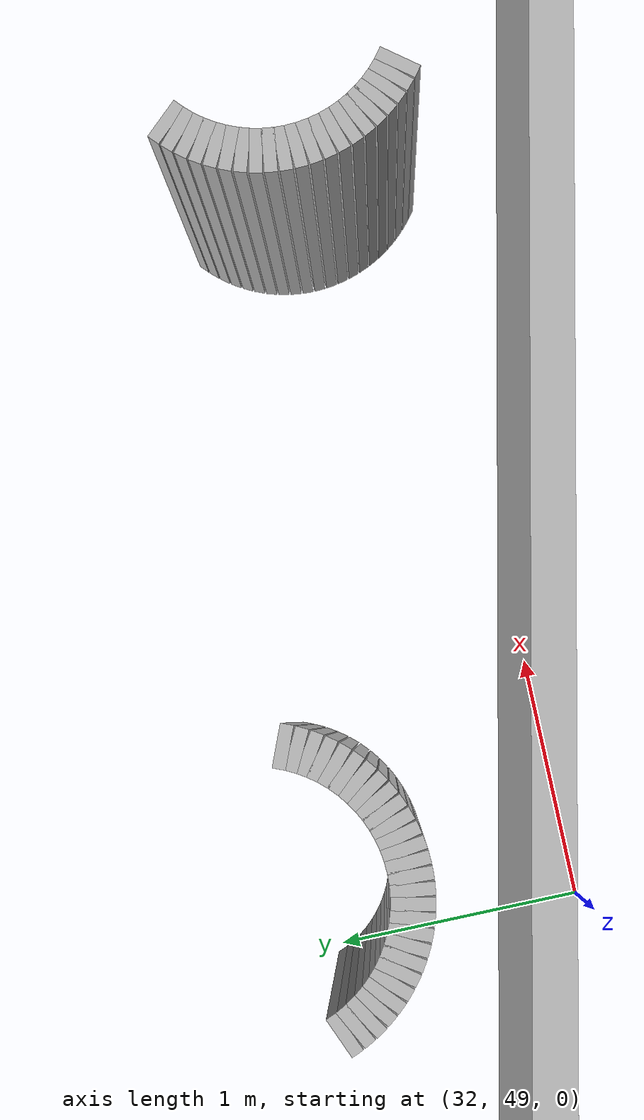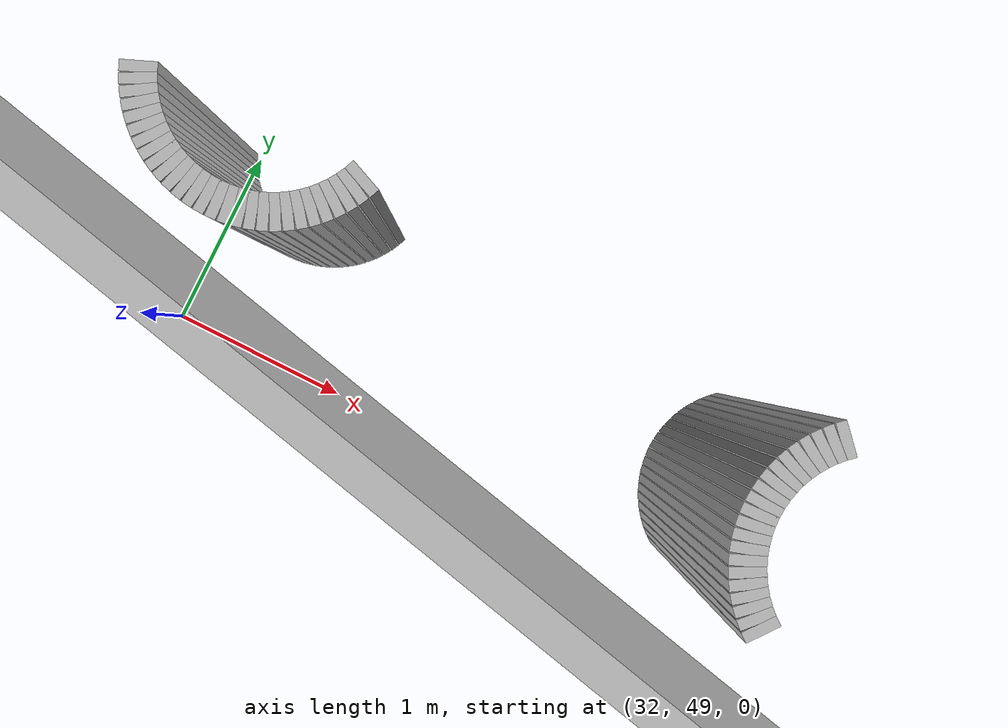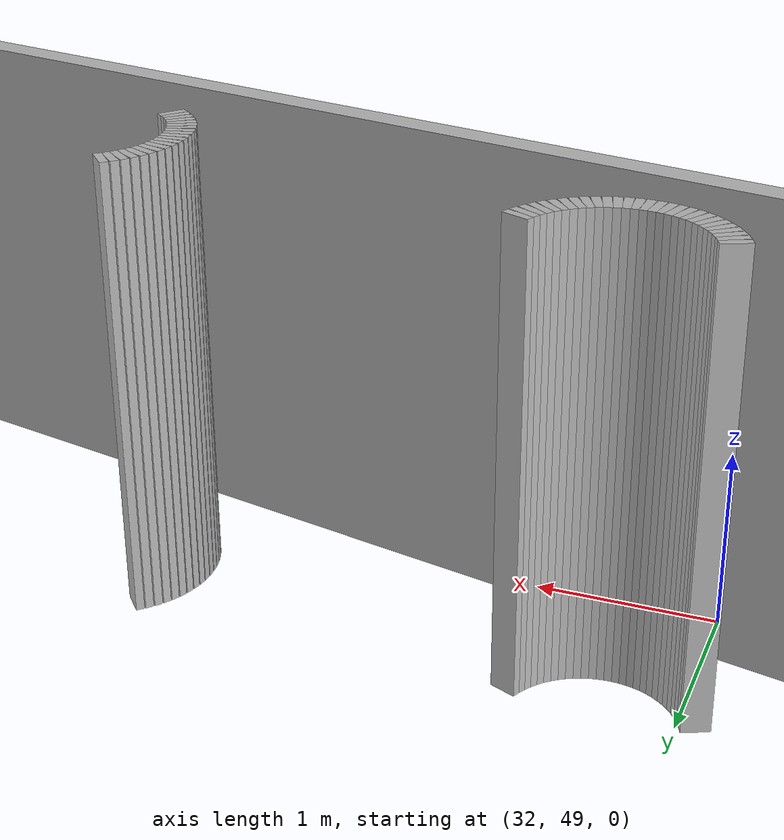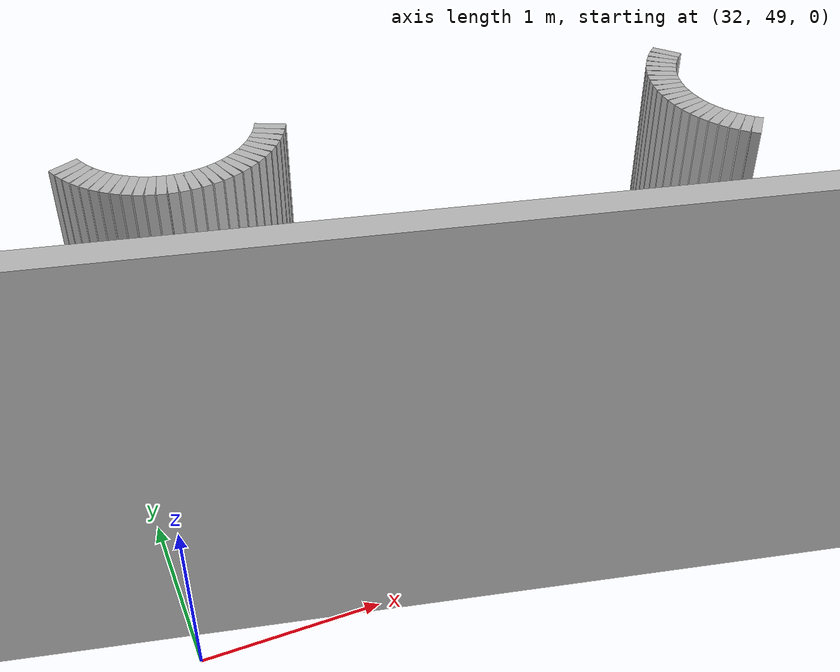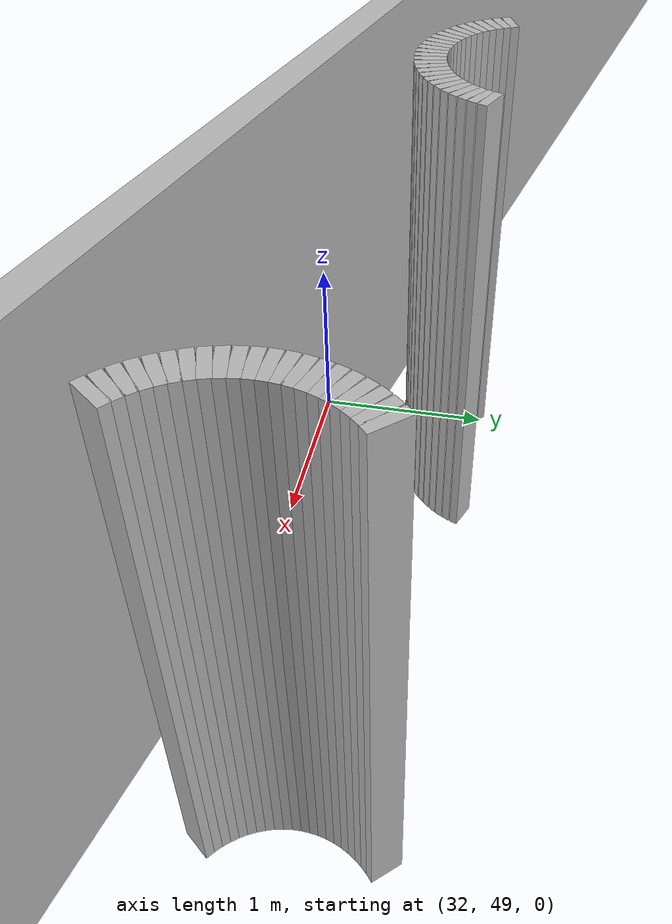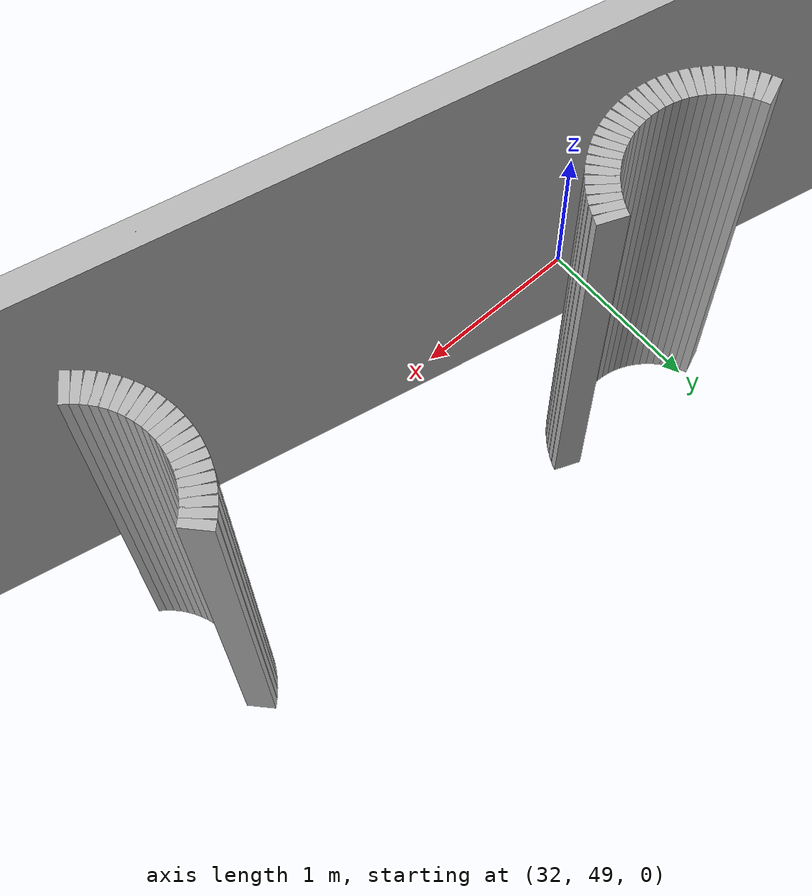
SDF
<sdf version="1.6">
 <model name="sps_2603">
  <static>1</static>
  <allow_auto_disable>0</allow_auto_disable>
  <link name="Wall2060">
   <collision name="collision"><geometry><box><size>0.0452834 0.15 2.5</size></box></geometry></collision>
   <visual name="visual">
    <geometry><box><size>0.0452834 0.15 2.5</size></box></geometry>
    <transparency>0.0</transparency>
   </visual>
   <pose>32.868 49.9762 1.25 0 0 -1.96507</pose>
  </link>
  <link name="Wall2061">
   <collision name="collision"><geometry><box><size>0.0455348 0.15 2.5</size></box></geometry></collision>
   <visual name="visual">
    <geometry><box><size>0.0455348 0.15 2.5</size></box></geometry>
    <transparency>0.0</transparency>
   </visual>
   <pose>32.8488 49.9351 1.25 0 0 -2.05003</pose>
  </link>
  <link name="Wall2062">
   <collision name="collision"><geometry><box><size>0.0452906 0.15 2.5</size></box></geometry></collision>
   <visual name="visual">
    <geometry><box><size>0.0452906 0.15 2.5</size></box></geometry>
    <transparency>0.0</transparency>
   </visual>
   <pose>32.8261 49.8958 1.25 0 0 -2.14011</pose>
  </link>
  <link name="Wall2063">
   <collision name="collision"><geometry><box><size>0.0453637 0.15 2.5</size></box></geometry></collision>
   <visual name="visual">
    <geometry><box><size>0.0453637 0.15 2.5</size></box></geometry>
    <transparency>0.0</transparency>
   </visual>
   <pose>32.8001 49.8587 1.25 0 0 -2.22452</pose>
  </link>
  <link name="Wall2064">
   <collision name="collision"><geometry><box><size>0.0453598 0.15 2.5</size></box></geometry></collision>
   <visual name="visual">
    <geometry><box><size>0.0453598 0.15 2.5</size></box></geometry>
    <transparency>0.0</transparency>
   </visual>
   <pose>32.771 49.824 1.25 0 0 -2.31241</pose>
  </link>
  <link name="Wall2065">
   <collision name="collision"><geometry><box><size>0.0454087 0.15 2.5</size></box></geometry></collision>
   <visual name="visual">
    <geometry><box><size>0.0454087 0.15 2.5</size></box></geometry>
    <transparency>0.0</transparency>
   </visual>
   <pose>32.7389 49.792 1.25 0 0 -2.40278</pose>
  </link>
  <link name="Wall2066">
   <collision name="collision"><geometry><box><size>0.0453637 0.15 2.5</size></box></geometry></collision>
   <visual name="visual">
    <geometry><box><size>0.0453637 0.15 2.5</size></box></geometry>
    <transparency>0.0</transparency>
   </visual>
   <pose>32.7041 49.7629 1.25 0 0 -2.48787</pose>
  </link>
  <link name="Wall2067">
   <collision name="collision"><geometry><box><size>0.045342 0.15 2.5</size></box></geometry></collision>
   <visual name="visual">
    <geometry><box><size>0.045342 0.15 2.5</size></box></geometry>
    <transparency>0.0</transparency>
   </visual>
   <pose>32.667 49.7369 1.25 0 0 -2.57301</pose>
  </link>
  <link name="Wall2068">
   <collision name="collision"><geometry><box><size>0.0453724 0.15 2.5</size></box></geometry></collision>
   <visual name="visual">
    <geometry><box><size>0.0453724 0.15 2.5</size></box></geometry>
    <transparency>0.0</transparency>
   </visual>
   <pose>32.6277 49.7142 1.25 0 0 -2.6605</pose>
  </link>
  <link name="Wall2069">
   <collision name="collision"><geometry><box><size>0.0453827 0.15 2.5</size></box></geometry></collision>
   <visual name="visual">
    <geometry><box><size>0.0453827 0.15 2.5</size></box></geometry>
    <transparency>0.0</transparency>
   </visual>
   <pose>32.5866 49.6951 1.25 0 0 -2.75259</pose>
  </link>
  <link name="Wall2070">
   <collision name="collision"><geometry><box><size>0.0452475 0.15 2.5</size></box></geometry></collision>
   <visual name="visual">
    <geometry><box><size>0.0452475 0.15 2.5</size></box></geometry>
    <transparency>0.0</transparency>
   </visual>
   <pose>32.5441 49.6797 1.25 0 0 -2.83605</pose>
  </link>
  <link name="Wall2071">
   <collision name="collision"><geometry><box><size>0.0453551 0.15 2.5</size></box></geometry></collision>
   <visual name="visual">
    <geometry><box><size>0.0453551 0.15 2.5</size></box></geometry>
    <transparency>0.0</transparency>
   </visual>
   <pose>32.5004 49.6679 1.25 0 0 -2.92044</pose>
  </link>
  <link name="Wall2072">
   <collision name="collision"><geometry><box><size>0.0453551 0.15 2.5</size></box></geometry></collision>
   <visual name="visual">
    <geometry><box><size>0.0453551 0.15 2.5</size></box></geometry>
    <transparency>0.0</transparency>
   </visual>
   <pose>32.4557 49.66 1.25 0 0 -3.0134</pose>
  </link>
  <link name="Wall2073">
   <collision name="collision"><geometry><box><size>0.0454548 0.15 2.5</size></box></geometry></collision>
   <visual name="visual">
    <geometry><box><size>0.0454548 0.15 2.5</size></box></geometry>
    <transparency>0.0</transparency>
   </visual>
   <pose>32.4105 49.6561 1.25 0 0 -3.09727</pose>
  </link>
  <link name="Wall2074">
   <collision name="collision"><geometry><box><size>0.0454548 0.15 2.5</size></box></geometry></collision>
   <visual name="visual">
    <geometry><box><size>0.0454548 0.15 2.5</size></box></geometry>
    <transparency>0.0</transparency>
   </visual>
   <pose>32.3651 49.6561 1.25 0 -0 3.09727</pose>
  </link>
  <link name="Wall2075">
   <collision name="collision"><geometry><box><size>0.0451973 0.15 2.5</size></box></geometry></collision>
   <visual name="visual">
    <geometry><box><size>0.0451973 0.15 2.5</size></box></geometry>
    <transparency>0.0</transparency>
   </visual>
   <pose>32.32 49.6601 1.25 0 -0 3.00886</pose>
  </link>
  <link name="Wall2076">
   <collision name="collision"><geometry><box><size>0.0454345 0.15 2.5</size></box></geometry></collision>
   <visual name="visual">
    <geometry><box><size>0.0454345 0.15 2.5</size></box></geometry>
    <transparency>0.0</transparency>
   </visual>
   <pose>32.2754 49.668 1.25 0 -0 2.92496</pose>
  </link>
  <link name="Wall2077">
   <collision name="collision"><geometry><box><size>0.0453057 0.15 2.5</size></box></geometry></collision>
   <visual name="visual">
    <geometry><box><size>0.0453057 0.15 2.5</size></box></geometry>
    <transparency>0.0</transparency>
   </visual>
   <pose>32.2317 49.6797 1.25 0 -0 2.83646</pose>
  </link>
  <link name="Wall2078">
   <collision name="collision"><geometry><box><size>0.0454525 0.15 2.5</size></box></geometry></collision>
   <visual name="visual">
    <geometry><box><size>0.0454525 0.15 2.5</size></box></geometry>
    <transparency>0.0</transparency>
   </visual>
   <pose>32.189 49.6952 1.25 0 -0 2.74887</pose>
  </link>
  <link name="Wall2079">
   <collision name="collision"><geometry><box><size>0.0453724 0.15 2.5</size></box></geometry></collision>
   <visual name="visual">
    <geometry><box><size>0.0453724 0.15 2.5</size></box></geometry>
    <transparency>0.0</transparency>
   </visual>
   <pose>32.1479 49.7144 1.25 0 -0 2.6605</pose>
  </link>
  <link name="Wall2080">
   <collision name="collision"><geometry><box><size>0.0452906 0.15 2.5</size></box></geometry></collision>
   <visual name="visual">
    <geometry><box><size>0.0452906 0.15 2.5</size></box></geometry>
    <transparency>0.0</transparency>
   </visual>
   <pose>32.1088 49.7371 1.25 0 -0 2.57228</pose>
  </link>
  <link name="Wall2081">
   <collision name="collision"><geometry><box><size>0.0453637 0.15 2.5</size></box></geometry></collision>
   <visual name="visual">
    <geometry><box><size>0.0453637 0.15 2.5</size></box></geometry>
    <transparency>0.0</transparency>
   </visual>
   <pose>32.0717 49.7631 1.25 0 -0 2.48787</pose>
  </link>
  <link name="Wall2082">
   <collision name="collision"><geometry><box><size>0.0453148 0.15 2.5</size></box></geometry></collision>
   <visual name="visual">
    <geometry><box><size>0.0453148 0.15 2.5</size></box></geometry>
    <transparency>0.0</transparency>
   </visual>
   <pose>32.037 49.7922 1.25 0 -0 2.39907</pose>
  </link>
  <link name="Wall2083">
   <collision name="collision"><geometry><box><size>0.0453148 0.15 2.5</size></box></geometry></collision>
   <visual name="visual">
    <geometry><box><size>0.0453148 0.15 2.5</size></box></geometry>
    <transparency>0.0</transparency>
   </visual>
   <pose>32.005 49.8242 1.25 0 -0 2.31332</pose>
  </link>
  <link name="Wall2084">
   <collision name="collision"><geometry><box><size>0.0454753 0.15 2.5</size></box></geometry></collision>
   <visual name="visual">
    <geometry><box><size>0.0454753 0.15 2.5</size></box></geometry>
    <transparency>0.0</transparency>
   </visual>
   <pose>31.9758 49.8589 1.25 0 -0 2.22772</pose>
  </link>
  <link name="Wall2085">
   <collision name="collision"><geometry><box><size>0.0453984 0.15 2.5</size></box></geometry></collision>
   <visual name="visual">
    <geometry><box><size>0.0453984 0.15 2.5</size></box></geometry>
    <transparency>0.0</transparency>
   </visual>
   <pose>31.9498 49.8961 1.25 0 -0 2.13381</pose>
  </link>
  <link name="Wall2086">
   <collision name="collision"><geometry><box><size>0.0453724 0.15 2.5</size></box></geometry></collision>
   <visual name="visual">
    <geometry><box><size>0.0453724 0.15 2.5</size></box></geometry>
    <transparency>0.0</transparency>
   </visual>
   <pose>31.9271 49.9354 1.25 0 -0 2.05189</pose>
  </link>
  <link name="Wall2087">
   <collision name="collision"><geometry><box><size>0.0452271 0.15 2.5</size></box></geometry></collision>
   <visual name="visual">
    <geometry><box><size>0.0452271 0.15 2.5</size></box></geometry>
    <transparency>0.0</transparency>
   </visual>
   <pose>31.908 49.9764 1.25 0 -0 1.96559</pose>
  </link>
  <link name="Wall2388">
   <collision name="collision"><geometry><box><size>0.0453637 0.15 2.5</size></box></geometry></collision>
   <visual name="visual">
    <geometry><box><size>0.0453637 0.15 2.5</size></box></geometry>
    <transparency>0.0</transparency>
   </visual>
   <pose>35.012 49.1233 1.25 0 -0 2.48787</pose>
  </link>
  <link name="Wall2389">
   <collision name="collision"><geometry><box><size>0.0454087 0.15 2.5</size></box></geometry></collision>
   <visual name="visual">
    <geometry><box><size>0.0454087 0.15 2.5</size></box></geometry>
    <transparency>0.0</transparency>
   </visual>
   <pose>34.9773 49.1524 1.25 0 -0 2.40278</pose>
  </link>
  <link name="Wall2390">
   <collision name="collision"><geometry><box><size>0.0453148 0.15 2.5</size></box></geometry></collision>
   <visual name="visual">
    <geometry><box><size>0.0453148 0.15 2.5</size></box></geometry>
    <transparency>0.0</transparency>
   </visual>
   <pose>34.9452 49.1844 1.25 0 -0 2.31332</pose>
  </link>
  <link name="Wall2391">
   <collision name="collision"><geometry><box><size>0.0453637 0.15 2.5</size></box></geometry></collision>
   <visual name="visual">
    <geometry><box><size>0.0453637 0.15 2.5</size></box></geometry>
    <transparency>0.0</transparency>
   </visual>
   <pose>34.916 49.2191 1.25 0 -0 2.22452</pose>
  </link>
  <link name="Wall2392">
   <collision name="collision"><geometry><box><size>0.0454964 0.15 2.5</size></box></geometry></collision>
   <visual name="visual">
    <geometry><box><size>0.0454964 0.15 2.5</size></box></geometry>
    <transparency>0.0</transparency>
   </visual>
   <pose>34.89 49.2563 1.25 0 -0 2.13722</pose>
  </link>
  <link name="Wall2393">
   <collision name="collision"><geometry><box><size>0.04526 0.15 2.5</size></box></geometry></collision>
   <visual name="visual">
    <geometry><box><size>0.04526 0.15 2.5</size></box></geometry>
    <transparency>0.0</transparency>
   </visual>
   <pose>34.8675 49.2956 1.25 0 -0 2.04711</pose>
  </link>
  <link name="Wall2394">
   <collision name="collision"><geometry><box><size>0.0454525 0.15 2.5</size></box></geometry></collision>
   <visual name="visual">
    <geometry><box><size>0.0454525 0.15 2.5</size></box></geometry>
    <transparency>0.0</transparency>
   </visual>
   <pose>34.8484 49.3367 1.25 0 -0 1.96352</pose>
  </link>
  <link name="Wall2395">
   <collision name="collision"><geometry><box><size>0.0453057 0.15 2.5</size></box></geometry></collision>
   <visual name="visual">
    <geometry><box><size>0.0453057 0.15 2.5</size></box></geometry>
    <transparency>0.0</transparency>
   </visual>
   <pose>34.8329 49.3793 1.25 0 -0 1.87593</pose>
  </link>
  <link name="Wall2396">
   <collision name="collision"><geometry><box><size>0.0452689 0.15 2.5</size></box></geometry></collision>
   <visual name="visual">
    <geometry><box><size>0.0452689 0.15 2.5</size></box></geometry>
    <transparency>0.0</transparency>
   </visual>
   <pose>34.8212 49.423 1.25 0 -0 1.78961</pose>
  </link>
  <link name="Wall2397">
   <collision name="collision"><geometry><box><size>0.0453788 0.15 2.5</size></box></geometry></collision>
   <visual name="visual">
    <geometry><box><size>0.0453788 0.15 2.5</size></box></geometry>
    <transparency>0.0</transparency>
   </visual>
   <pose>34.8133 49.4676 1.25 0 -0 1.70299</pose>
  </link>
  <link name="Wall2398">
   <collision name="collision"><geometry><box><size>0.0454548 0.15 2.5</size></box></geometry></collision>
   <visual name="visual">
    <geometry><box><size>0.0454548 0.15 2.5</size></box></geometry>
    <transparency>0.0</transparency>
   </visual>
   <pose>34.8093 49.5128 1.25 0 -0 1.61512</pose>
  </link>
  <link name="Wall2399">
   <collision name="collision"><geometry><box><size>0.0452719 0.15 2.5</size></box></geometry></collision>
   <visual name="visual">
    <geometry><box><size>0.0452719 0.15 2.5</size></box></geometry>
    <transparency>0.0</transparency>
   </visual>
   <pose>34.8093 49.5581 1.25 0 -0 1.52629</pose>
  </link>
  <link name="Wall2400">
   <collision name="collision"><geometry><box><size>0.0453788 0.15 2.5</size></box></geometry></collision>
   <visual name="visual">
    <geometry><box><size>0.0453788 0.15 2.5</size></box></geometry>
    <transparency>0.0</transparency>
   </visual>
   <pose>34.8133 49.6032 1.25 0 -0 1.4386</pose>
  </link>
  <link name="Wall2401">
   <collision name="collision"><geometry><box><size>0.0455072 0.15 2.5</size></box></geometry></collision>
   <visual name="visual">
    <geometry><box><size>0.0455072 0.15 2.5</size></box></geometry>
    <transparency>0.0</transparency>
   </visual>
   <pose>34.8212 49.6479 1.25 0 -0 1.35315</pose>
  </link>
  <link name="Wall2402">
   <collision name="collision"><geometry><box><size>0.0452475 0.15 2.5</size></box></geometry></collision>
   <visual name="visual">
    <geometry><box><size>0.0452475 0.15 2.5</size></box></geometry>
    <transparency>0.0</transparency>
   </visual>
   <pose>34.8329 49.6917 1.25 0 -0 1.26526</pose>
  </link>
  <link name="Wall2403">
   <collision name="collision"><geometry><box><size>0.0452834 0.15 2.5</size></box></geometry></collision>
   <visual name="visual">
    <geometry><box><size>0.0452834 0.15 2.5</size></box></geometry>
    <transparency>0.0</transparency>
   </visual>
   <pose>34.8484 49.7342 1.25 0 -0 1.17652</pose>
  </link>
  <link name="Wall2404">
   <collision name="collision"><geometry><box><size>0.0455348 0.15 2.5</size></box></geometry></collision>
   <visual name="visual">
    <geometry><box><size>0.0455348 0.15 2.5</size></box></geometry>
    <transparency>0.0</transparency>
   </visual>
   <pose>34.8676 49.7753 1.25 0 -0 1.09156</pose>
  </link>
  <link name="Wall2405">
   <collision name="collision"><geometry><box><size>0.0453092 0.15 2.5</size></box></geometry></collision>
   <visual name="visual">
    <geometry><box><size>0.0453092 0.15 2.5</size></box></geometry>
    <transparency>0.0</transparency>
   </visual>
   <pose>34.8903 49.8146 1.25 0 -0 1.00334</pose>
  </link>
  <link name="Wall2406">
   <collision name="collision"><geometry><box><size>0.0454008 0.15 2.5</size></box></geometry></collision>
   <visual name="visual">
    <geometry><box><size>0.0454008 0.15 2.5</size></box></geometry>
    <transparency>0.0</transparency>
   </visual>
   <pose>34.9163 49.8517 1.25 0 -0 0.916002</pose>
  </link>
  <link name="Wall2407">
   <collision name="collision"><geometry><box><size>0.0453974 0.15 2.5</size></box></geometry></collision>
   <visual name="visual">
    <geometry><box><size>0.0453974 0.15 2.5</size></box></geometry>
    <transparency>0.0</transparency>
   </visual>
   <pose>34.9455 49.8864 1.25 0 -0 0.826289</pose>
  </link>
  <link name="Wall2408">
   <collision name="collision"><geometry><box><size>0.0453186 0.15 2.5</size></box></geometry></collision>
   <visual name="visual">
    <geometry><box><size>0.0453186 0.15 2.5</size></box></geometry>
    <transparency>0.0</transparency>
   </visual>
   <pose>34.9776 49.9184 1.25 0 -0 0.740624</pose>
  </link>
  <link name="Wall2660">
   <collision name="collision"><geometry><box><size>156.708 0.15 2.5</size></box></geometry></collision>
   <visual name="visual">
    <geometry><box><size>156.708 0.15 2.5</size></box></geometry>
    <transparency>0.0</transparency>
   </visual>
   <pose>32.4697 49.1524 1.25 0 -0 2.92734</pose>
  </link>
 </model>
</sdf>
